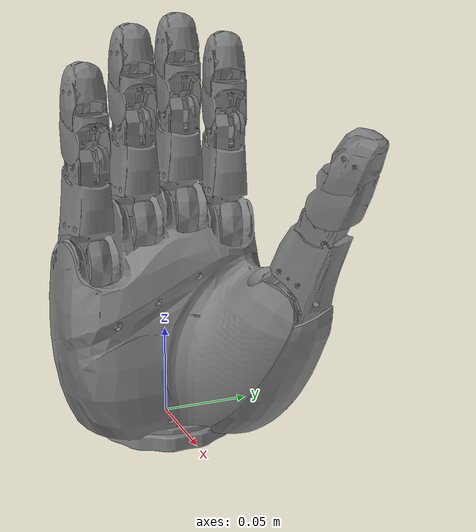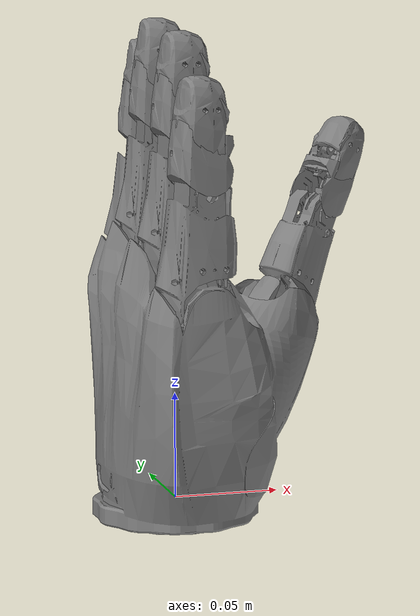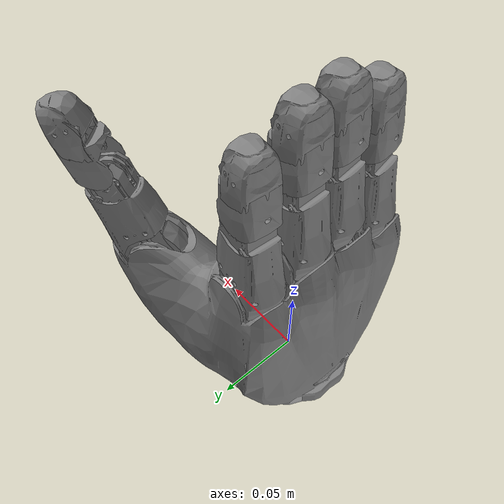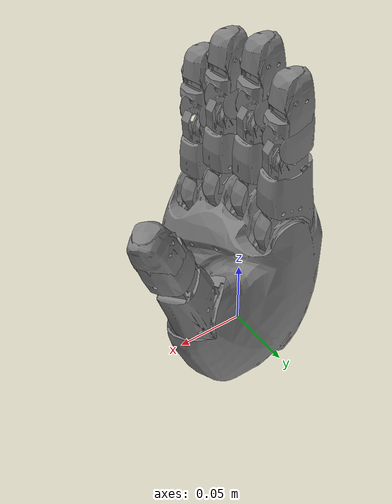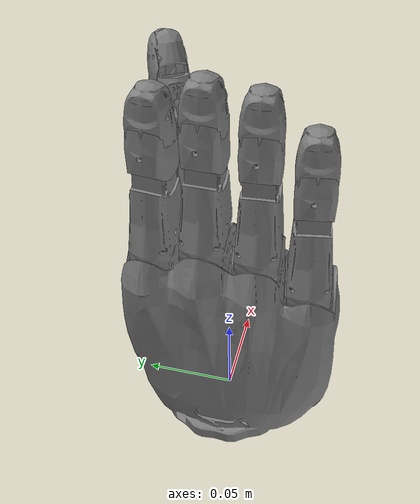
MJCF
<mujoco model="hithand">
    <compiler angle="radian" meshdir="meshes/" />
    <size njmax="500" nconmax="100" />
    <asset>
        <mesh name="hit-hand-2-palm-right" file="hit-hand-2-palm-right.stl" />
        <mesh name="hit-hand-2-finger-basecover" file="hit-hand-2-finger-basecover.stl" />
        <mesh name="hit-hand-2-finger-phaprox" file="hit-hand-2-finger-phaprox.stl" />
        <mesh name="hit-hand-2-finger-phamed" file="hit-hand-2-finger-phamed.stl" />
        <mesh name="hit-hand-2-finger-phadist" file="hit-hand-2-finger-phadist.stl" />
    </asset>
    <worldbody>
        <geom type="mesh" mesh="hit-hand-2-palm-right" />
        <body name="Right_Thumb_Basecover" pos="0.0621759 0.0443729 0.0787348" quat="0.821503 0.199145 -0.481905 0.230741">
            <inertial pos="0 0 0" mass="1" diaginertia="1 1 1" />
            <joint name="Right_Thumb_1" pos="0 0 0" axis="0 0 1" limited="true" range="-0.5 1.4" damping="0.7" frictionloss="0.5" />
            <geom type="mesh" mesh="hit-hand-2-finger-basecover" />
            <body name="Right_Thumb_Phoaprox" pos="0 0 0" quat="0.707105 0.707108 0 0">
                <inertial pos="0.0621759 0.0443729 0.0787348" quat="0.821503 0.199145 -0.481905 0.230741" mass="1" diaginertia="1 1 1" />
                <joint name="Right_Thumb_2" pos="0 0 0" axis="0 0 1" limited="true" range="-0.5 1.4" damping="0.7" frictionloss="0.5" />
                <geom pos="0 0 0" type="mesh" mesh="hit-hand-2-finger-phaprox" />
                <body name="Right_Thumb_Phamed" pos="0.055 0 0">
                    <inertial pos="0 0 0" mass="1" diaginertia="1 1 1" />
                    <joint name="Right_Thumb_3" pos="0 0 0" axis="0 0 1" limited="true" range="-0.5 1.4" damping="0.7" frictionloss="0.5" />
                    <geom pos="0.01 0 0" type="mesh" mesh="hit-hand-2-finger-phamed" />
                    <body name="Right_Thumb_Phadist" pos="0.025 0 0" quat="0.707388 0 0 -0.706825">
                        <inertial pos="0 0 0" mass="1" diaginertia="1 1 1" />
                        <joint name="Right_Thumb_4" pos="0 0 0" axis="0 0 1" limited="true" range="-0.5 1.4" damping="0.7" frictionloss="0.5" />
                        <geom type="mesh" mesh="hit-hand-2-finger-phadist" />
                    </body>
                </body>
            </body>
        </body>
        <body name="Right_Index_Basecover" pos="-0.00252988 0.0368001 0.107784" quat="0.0308436 0.706434 -0.0308436 0.706434">
            <inertial pos="0 0 0" mass="1" diaginertia="1 1 1" />
            <joint name="Right_Index_1" pos="0 0 0" axis="0 0 1" limited="true" range="-0.5 1.4" damping="0.7" frictionloss="0.5" />
            <geom type="mesh" mesh="hit-hand-2-finger-basecover" />
            <body name="Right_Index_Phoaprox" pos="0 0 0" quat="0.707105 0.707108 0 0">
                <inertial pos="0.0621759 0.0443729 0.0787348" quat="0.821503 0.199145 -0.481905 0.230741" mass="1" diaginertia="1 1 1" />
                <joint name="Right_Index_2" pos="0 0 0" axis="0 0 1" limited="true" range="-0.5 1.4" damping="0.7" frictionloss="0.5" />
                <geom pos="0 0 0" type="mesh" mesh="hit-hand-2-finger-phaprox" />
                <body name="Right_Index_Phamed" pos="0.055 0 0">
                    <inertial pos="0 0 0" mass="1" diaginertia="1 1 1" />
                    <joint name="Right_Index_3" pos="0 0 0" axis="0 0 1" limited="true" range="-0.5 1.4" damping="0.7" frictionloss="0.5" />
                    <geom pos="0.01 0 0" type="mesh" mesh="hit-hand-2-finger-phamed" />
                    <body name="Right_Index_Phadist" pos="0.025 0 0" quat="0.707388 0 0 -0.706825">
                        <inertial pos="0 0 0" mass="1" diaginertia="1 1 1" />
                        <joint name="Right_Index_4" pos="0 0 0" axis="0 0 1" limited="true" range="-0.5 1.4" damping="0.7" frictionloss="0.5" />
                        <geom type="mesh" mesh="hit-hand-2-finger-phadist" />
                    </body>
                </body>
            </body>
        </body>
        <body name="Right_Middle_Basecover" pos="-0.0037 0.01 0.117784" quat="-1.22475e-07 -0.707107 1.22474e-07 -0.707107">
            <inertial pos="0 0 0" mass="1" diaginertia="1 1 1" />
            <joint name="Right_Middle_1" pos="0 0 0" axis="0 0 1" limited="true" range="-0.5 1.4" damping="0.7" frictionloss="0.5" />
            <geom type="mesh" mesh="hit-hand-2-finger-basecover" />
            <body name="Right_Middle_Phoaprox" pos="0 0 0" quat="0.707105 0.707108 0 0">
                <inertial pos="0.0621759 0.0443729 0.0787348" quat="0.821503 0.199145 -0.481905 0.230741" mass="1" diaginertia="1 1 1" />
                <joint name="Right_Middle_2" pos="0 0 0" axis="0 0 1" limited="true" range="-0.5 1.4" damping="0.7" frictionloss="0.5" />
                <geom pos="0 0 0" type="mesh" mesh="hit-hand-2-finger-phaprox" />
                <body name="Right_Middle_Phamed" pos="0.055 0 0">
                    <inertial pos="0 0 0" mass="1" diaginertia="1 1 1" />
                    <joint name="Right_Middle_3" pos="0 0 0" axis="0 0 1" limited="true" range="-0.5 1.4" damping="0.7" frictionloss="0.5" />
                    <geom pos="0.01 0 0" type="mesh" mesh="hit-hand-2-finger-phamed" />
                    <body name="Right_Middle_Phadist" pos="0.025 0 0" quat="0.707388 0 0 -0.706825">
                        <inertial pos="0 0 0" mass="1" diaginertia="1 1 1" />
                        <joint name="Right_Middle_4" pos="0 0 0" axis="0 0 1" limited="true" range="-0.5 1.4" damping="0.7" frictionloss="0.5" />
                        <geom type="mesh" mesh="hit-hand-2-finger-phadist" />
                    </body>
                </body>
            </body>
        </body>
        <body name="Right_Ring_Basecover" pos="0 -0.0168001 0.112584" quat="0.0308436 -0.706434 -0.0308436 -0.706434">
            <inertial pos="0 0 0" mass="1" diaginertia="1 1 1" />
            <joint name="Right_Ring_1" pos="0 0 0" axis="0 0 1" limited="true" range="-0.5 1.4" damping="0.7" frictionloss="0.5" />
            <geom type="mesh" mesh="hit-hand-2-finger-basecover" />
            <body name="Right_Ring_Phoaprox" pos="0 0 0" quat="0.707105 0.707108 0 0">
                <inertial pos="0.0621759 0.0443729 0.0787348" quat="0.821503 0.199145 -0.481905 0.230741" mass="1" diaginertia="1 1 1" />
                <joint name="Right_Ring_2" pos="0 0 0" axis="0 0 1" limited="true" range="-0.5 1.4" damping="0.7" frictionloss="0.5" />
                <geom pos="0 0 0" type="mesh" mesh="hit-hand-2-finger-phaprox" />
                <body name="Right_Ring_Phamed" pos="0.055 0 0">
                    <inertial pos="0 0 0" mass="1" diaginertia="1 1 1" />
                    <joint name="Right_Ring_3" pos="0 0 0" axis="0 0 1" limited="true" range="-0.5 1.4" damping="0.7" frictionloss="0.5" />
                    <geom pos="0.01 0 0" type="mesh" mesh="hit-hand-2-finger-phamed" />
                    <body name="Right_Ring_Phadist" pos="0.025 0 0" quat="0.707388 0 0 -0.706825">
                        <inertial pos="0 0 0" mass="1" diaginertia="1 1 1" />
                        <joint name="Right_Ring_4" pos="0 0 0" axis="0 0 1" limited="true" range="-0.5 1.4" damping="0.7" frictionloss="0.5" />
                        <geom type="mesh" mesh="hit-hand-2-finger-phadist" />
                    </body>
                </body>
            </body>
        </body>
        <body name="Right_Little_Basecover" pos="0.000971571 -0.0433963 0.0935835" quat="0.0616283 -0.704416 -0.0616283 -0.704416">
            <inertial pos="0 0 0" mass="1" diaginertia="1 1 1" />
            <joint name="Right_Little_1" pos="0 0 0" axis="0 0 1" limited="true" range="-0.5 1.4" damping="0.7" frictionloss="0.5" />
            <geom type="mesh" mesh="hit-hand-2-finger-basecover" />
            <body name="Right_Little_Phoaprox" pos="0 0 0" quat="0.707105 0.707108 0 0">
                <inertial pos="0.0621759 0.0443729 0.0787348" quat="0.821503 0.199145 -0.481905 0.230741" mass="1" diaginertia="1 1 1" />
                <joint name="Right_Little_2" pos="0 0 0" axis="0 0 1" limited="true" range="-0.5 1.4" damping="0.7" frictionloss="0.5" />
                <geom pos="0 0 0" type="mesh" mesh="hit-hand-2-finger-phaprox" />
                <body name="Right_Little_Phamed" pos="0.055 0 0">
                    <inertial pos="0 0 0" mass="1" diaginertia="1 1 1" />
                    <joint name="Right_Little_3" pos="0 0 0" axis="0 0 1" limited="true" range="-0.5 1.4" damping="0.7" frictionloss="0.5" />
                    <geom pos="0.01 0 0" type="mesh" mesh="hit-hand-2-finger-phamed" />
                    <body name="Right_Little_Phadist" pos="0.025 0 0" quat="0.707388 0 0 -0.706825">
                        <inertial pos="0 0 0" mass="1" diaginertia="1 1 1" />
                        <joint name="Right_Little_4" pos="0 0 0" axis="0 0 1" limited="true" range="-0.5 1.4" damping="0.7" frictionloss="0.5" />
                        <geom type="mesh" mesh="hit-hand-2-finger-phadist" />
                    </body>
                </body>
            </body>
        </body>
    </worldbody>
</mujoco>
